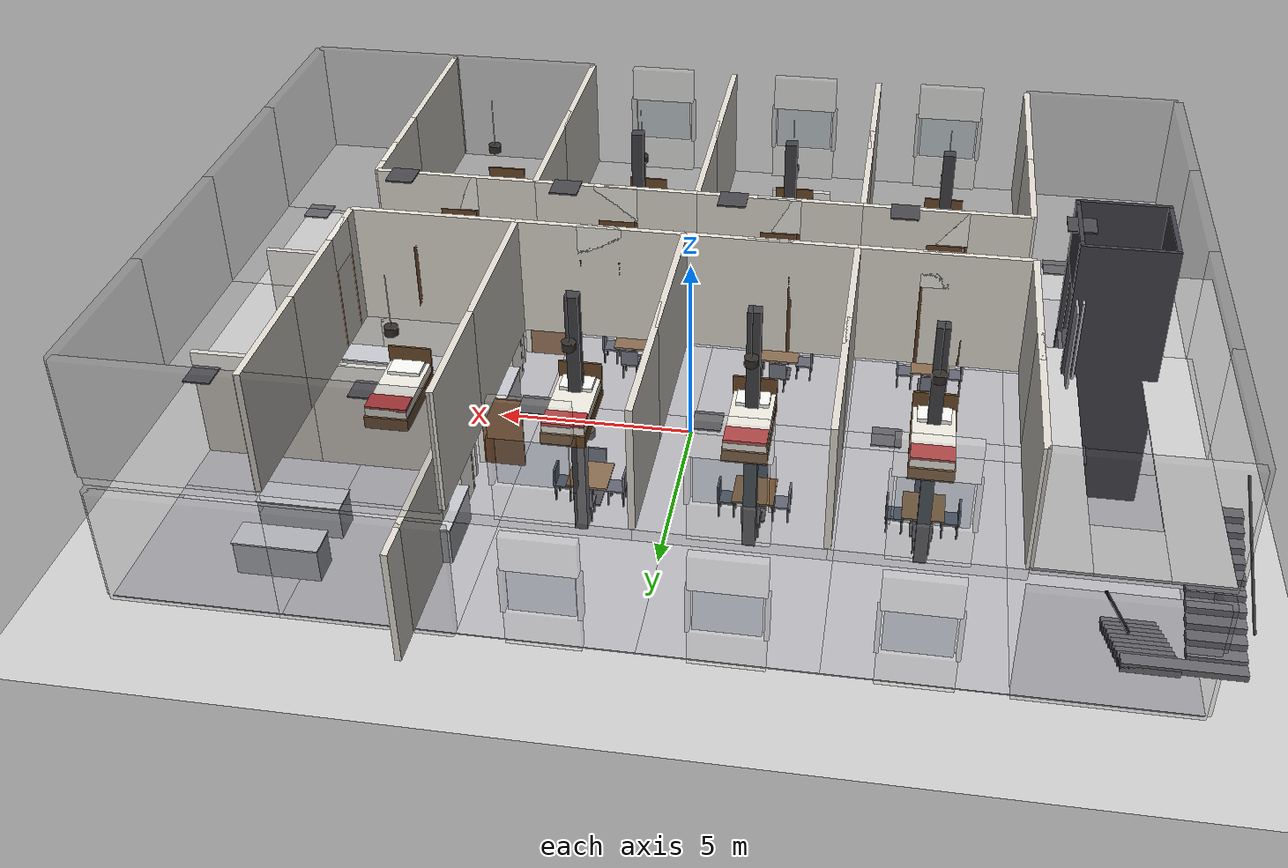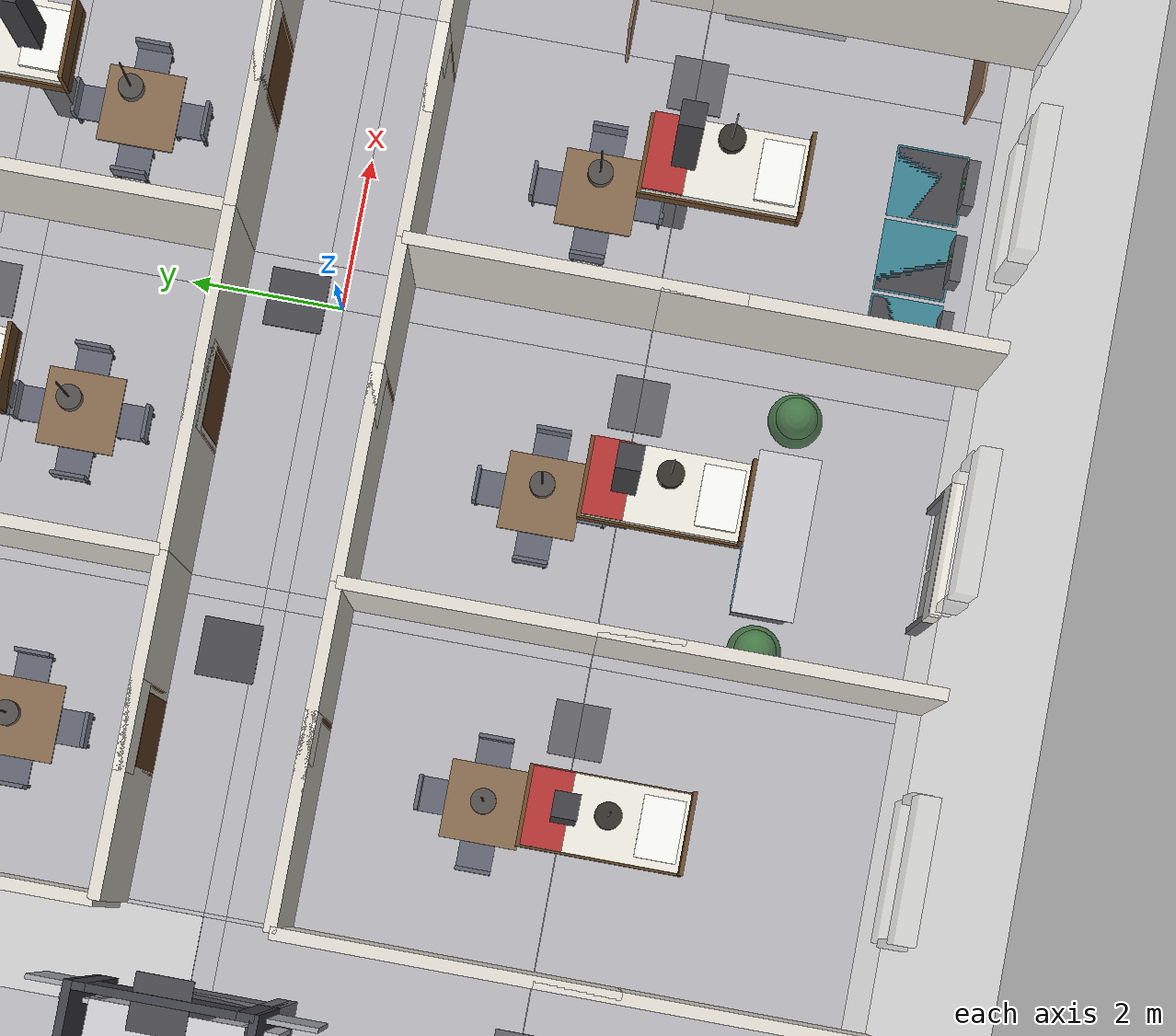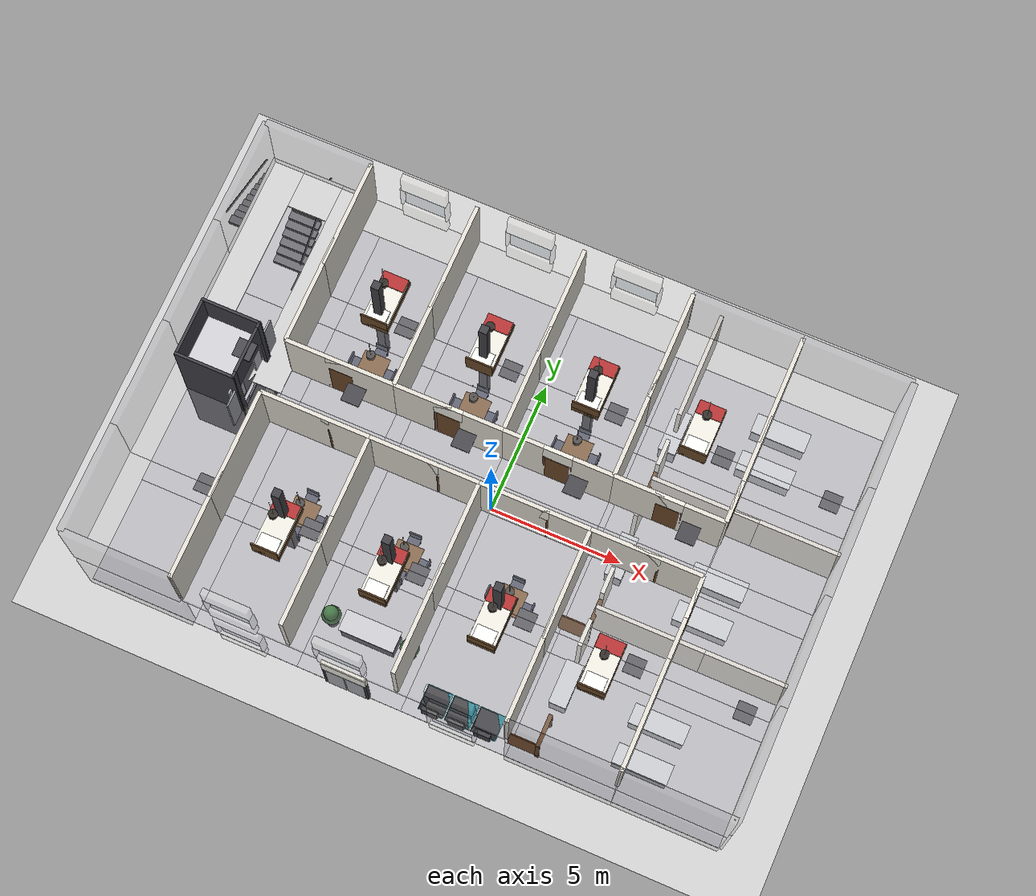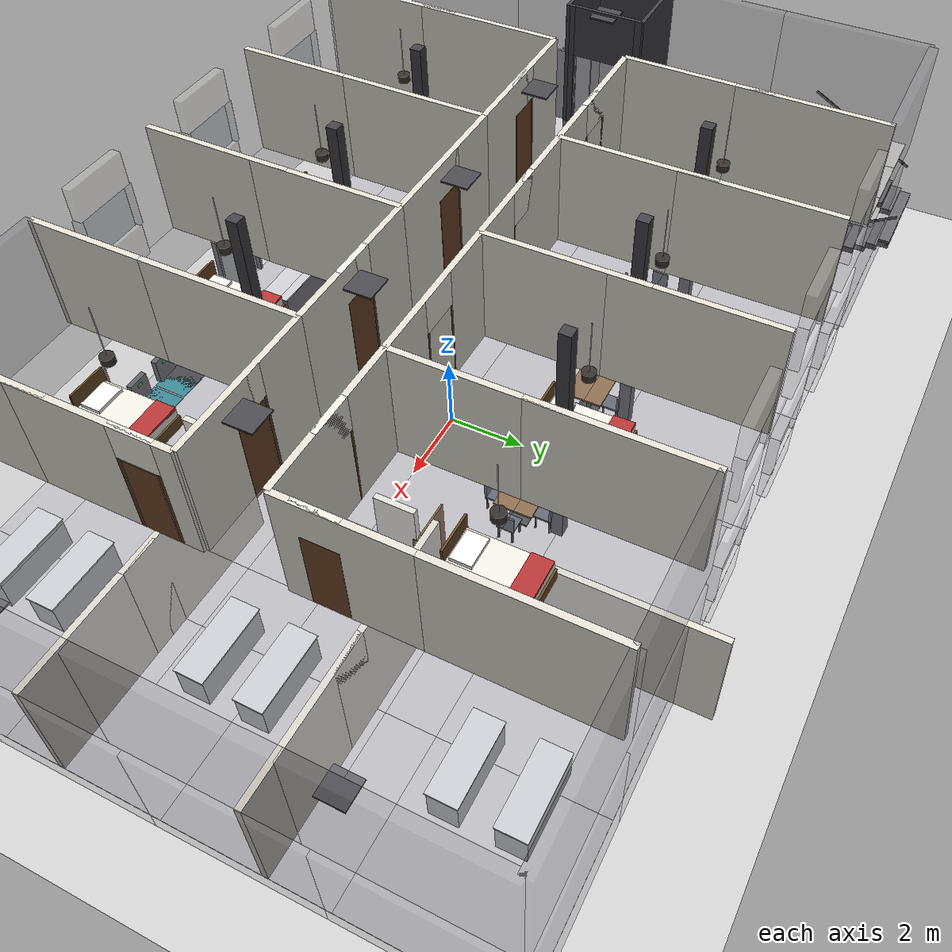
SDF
<?xml version="1.0" ?>
<sdf version="1.6">
  <world name="restaurant">
    <!-- A global light source -->
    <include>
      <uri>model://sun</uri>
    </include>
    <!-- A ground plane -->
    <include>
      <uri>model://ground_plane</uri>
    </include>

    <physics type="ode">
      <max_step_size>0.001</max_step_size>
      <real_time_factor>1</real_time_factor>
      <real_time_update_rate>1000</real_time_update_rate>
    </physics>

    <!-- Ground Floor Assembly -->
    <include>
      <name>ground_floor_inst</name>
      <uri>model://ground_floor</uri>
      <pose>0 0 0 0 0 0</pose>
    </include>

    <!-- First Floor Assembly -->
    <include>
      <name>first_floor_inst</name>
      <uri>model://first_floor</uri>
      <pose>0 0 3.5 0 0 0</pose>
    </include>

    <include>
      <name>lift_assembly_inst</name>
      <uri>model://_fixtures/lift_assembly</uri>
      <pose>-10 0 0 0 0 -1.5708</pose>
    </include>

  </world>
</sdf>

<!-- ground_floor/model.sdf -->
<sdf version="1.6">
  <model name="ground_floor">
    <static>true</static>

    <!-- Floor Slabs (6x4 grid) -->
    <!-- Row 1 (y = -6) -->
    <include><name>floor_slab_0_0</name><uri>model://_components/floor_slab</uri><pose>-10 -6 0 0 0 0</pose></include>
    <include><name>floor_slab_1_0</name><uri>model://_components/floor_slab</uri><pose>-6 -6 0 0 0 0</pose></include>
    <include><name>floor_slab_2_0</name><uri>model://_components/floor_slab</uri><pose>-2 -6 0 0 0 0</pose></include>
    <include><name>floor_slab_3_0</name><uri>model://_components/floor_slab</uri><pose>2 -6 0 0 0 0</pose></include>
    <include><name>floor_slab_4_0</name><uri>model://_components/floor_slab</uri><pose>6 -6 0 0 0 0</pose></include>
    <include><name>floor_slab_5_0</name><uri>model://_components/floor_slab</uri><pose>10 -6 0 0 0 0</pose></include>

    <!-- Row 2 (y = -2) -->
    <include><name>floor_slab_0_1</name><uri>model://_components/floor_slab</uri><pose>-10 -2 0 0 0 0</pose></include>
    <include><name>floor_slab_1_1</name><uri>model://_components/floor_slab</uri><pose>-6 -2 0 0 0 0</pose></include>
    <include><name>floor_slab_2_1</name><uri>model://_components/floor_slab</uri><pose>-2 -2 0 0 0 0</pose></include>
    <include><name>floor_slab_3_1</name><uri>model://_components/floor_slab</uri><pose>2 -2 0 0 0 0</pose></include>
    <include><name>floor_slab_4_1</name><uri>model://_components/floor_slab</uri><pose>6 -2 0 0 0 0</pose></include>
    <include><name>floor_slab_5_1</name><uri>model://_components/floor_slab</uri><pose>10 -2 0 0 0 0</pose></include>

    <!-- Row 3 (y = 2) -->
    <include><name>floor_slab_0_2</name><uri>model://_components/floor_slab</uri><pose>-10 2 0 0 0 0</pose></include>
    <include><name>floor_slab_1_2</name><uri>model://_components/floor_slab</uri><pose>-6 2 0 0 0 0</pose></include>
    <include><name>floor_slab_2_2</name><uri>model://_components/floor_slab</uri><pose>-2 2 0 0 0 0</pose></include>
    <include><name>floor_slab_3_2</name><uri>model://_components/floor_slab</uri><pose>2 2 0 0 0 0</pose></include>
    <include><name>floor_slab_4_2</name><uri>model://_components/floor_slab</uri><pose>6 2 0 0 0 0</pose></include>
    <include><name>floor_slab_5_2</name><uri>model://_components/floor_slab</uri><pose>10 2 0 0 0 0</pose></include>

    <!-- Row 4 (y = 6) -->
    <include><name>floor_slab_0_3</name><uri>model://_components/floor_slab</uri><pose>-10 6 0 0 0 0</pose></include>
    <include><name>floor_slab_1_3</name><uri>model://_components/floor_slab</uri><pose>-6 6 0 0 0 0</pose></include>
    <include><name>floor_slab_2_3</name><uri>model://_components/floor_slab</uri><pose>-2 6 0 0 0 0</pose></include>
    <include><name>floor_slab_3_3</name><uri>model://_components/floor_slab</uri><pose>2 6 0 0 0 0</pose></include>
    <include><name>floor_slab_4_3</name><uri>model://_components/floor_slab</uri><pose>6 6 0 0 0 0</pose></include>
    <include><name>floor_slab_5_3</name><uri>model://_components/floor_slab</uri><pose>10 6 0 0 0 0</pose></include>

    <!-- Exterior Walls -->
    <!-- South Facade (y = -8) -->
    <include><name>ext_wall_s0</name><uri>model://_components/wall_exterior</uri><pose>-10 -8 0 0 0 0</pose></include>
    <include><name>ext_wall_s1</name><uri>model://_components/window_standard</uri><pose>-6 -8 0 0 0 0</pose></include>
    <include><name>ext_wall_s2</name><uri>model://_components/door_double</uri><pose>-2 -8 0 0 0 0</pose></include>
    <include><name>ext_wall_s3</name><uri>model://_components/window_standard</uri><pose>2 -8 0 0 0 0</pose></include>
    <include><name>ext_wall_s4</name><uri>model://_components/wall_exterior</uri><pose>6 -8 0 0 0 0</pose></include>
    <include><name>ext_wall_s5</name><uri>model://_components/wall_exterior</uri><pose>10 -8 0 0 0 0</pose></include>

    <!-- North Facade (y = 8) -->
    <include><name>ext_wall_n0</name><uri>model://_components/wall_exterior</uri><pose>-10 8 0 0 0 3.14159</pose></include>
    <include><name>ext_wall_n1</name><uri>model://_components/window_standard</uri><pose>-6 8 0 0 0 3.14159</pose></include>
    <include><name>ext_wall_n2</name><uri>model://_components/window_standard</uri><pose>-2 8 0 0 0 3.14159</pose></include>
    <include><name>ext_wall_n3</name><uri>model://_components/window_standard</uri><pose>2 8 0 0 0 3.14159</pose></include>
    <include><name>ext_wall_n4</name><uri>model://_components/wall_exterior</uri><pose>6 8 0 0 0 3.14159</pose></include>
    <include><name>ext_wall_n5</name><uri>model://_components/wall_exterior</uri><pose>10 8 0 0 0 3.14159</pose></include>

    <!-- West Facade (x = -12) -->
    <include><name>ext_wall_w0</name><uri>model://_components/wall_exterior</uri><pose>-12 -6 0 0 0 1.5708</pose></include>
    <include><name>ext_wall_w1</name><uri>model://_components/wall_exterior</uri><pose>-12 -2 0 0 0 1.5708</pose></include>
    <include><name>ext_wall_w2</name><uri>model://_components/wall_exterior</uri><pose>-12 2 0 0 0 1.5708</pose></include>
    <include><name>ext_wall_w3</name><uri>model://_components/wall_exterior</uri><pose>-12 6 0 0 0 1.5708</pose></include>

    <!-- East Facade (x = 12) -->
    <include><name>ext_wall_e0</name><uri>model://_components/wall_exterior</uri><pose>12 -6 0 0 0 1.5708</pose></include>
    <include><name>ext_wall_e1</name><uri>model://_components/wall_exterior</uri><pose>12 -2 0 0 0 1.5708</pose></include>
    <include><name>ext_wall_e2</name><uri>model://_components/wall_exterior</uri><pose>12 2 0 0 0 1.5708</pose></include>
    <include><name>ext_wall_e3</name><uri>model://_components/wall_exterior</uri><pose>12 6 0 0 0 1.5708</pose></include>

    <!-- Pillars / Columns -->
    <include><name>column_0</name><uri>model://_components/column</uri><pose>-6 -4 0 0 0 0</pose></include>
    <include><name>column_1</name><uri>model://_components/column</uri><pose>-2 -4 0 0 0 0</pose></include>
    <include><name>column_2</name><uri>model://_components/column</uri><pose>2 -4 0 0 0 0</pose></include>
    <include><name>column_3</name><uri>model://_components/column</uri><pose>-6 4 0 0 0 0</pose></include>
    <include><name>column_4</name><uri>model://_components/column</uri><pose>-2 4 0 0 0 0</pose></include>
    <include><name>column_5</name><uri>model://_components/column</uri><pose>2 4 0 0 0 0</pose></include>

    <!-- Staircase (Back-Left Area) - moved to the former lift spot, same working rotation -->
    <include><name>stairs</name><uri>model://_fixtures/staircase</uri><pose>-10 5.5 0 0 0 1.5708</pose></include>

    <!-- Kitchen Partition Wall (x = 5.0) and Gaps for Counters / Doors -->
    <include><name>kitchen_partition_n</name><uri>model://_components/wall_segment_4m</uri><pose>5.0 7.0 0 0 0 1.5708</pose></include>
    <include><name>kitchen_partition_mid1</name><uri>model://_components/wall_segment</uri><pose>5.0 3.5 0 0 0 1.5708</pose></include>
    <include><name>kitchen_partition_mid2</name><uri>model://_components/wall_segment</uri><pose>5.0 1.5 0 0 0 1.5708</pose></include>
    <include><name>kitchen_partition_mid3</name><uri>model://_components/wall_segment</uri><pose>5.0 -1.5 0 0 0 1.5708</pose></include>
    <include><name>kitchen_partition_mid4</name><uri>model://_components/wall_segment</uri><pose>5.0 -3.5 0 0 0 1.5708</pose></include>

    <!-- Kitchen Side Walls (East-West division walls) -->
    <!-- Kitchen 1 vs Kitchen 2 (y = 2.5) -->
    <include><name>kitchen_wall_1_2_a</name><uri>model://_components/wall_segment_4m</uri><pose>7.0 2.5 0 0 0 0</pose></include>
    <include><name>kitchen_wall_1_2_b</name><uri>model://_components/wall_segment_4m</uri><pose>10.0 2.5 0 0 0 0</pose></include>
    <!-- Kitchen 2 vs Kitchen 3 (y = -2.5) -->
    <include><name>kitchen_wall_2_3_a</name><uri>model://_components/wall_segment_4m</uri><pose>7.0 -2.5 0 0 0 0</pose></include>
    <include><name>kitchen_wall_2_3_b</name><uri>model://_components/wall_segment_4m</uri><pose>10.0 -2.5 0 0 0 0</pose></include>

    <!-- Kitchen Entry Doors (placed in partition wall at x = 5.0) -->
    <include><name>kitchen_door_1</name><uri>model://_components/door_single_wide</uri><pose>5.0 2.5 0 0 0 1.5708</pose></include>
    <include><name>kitchen_door_2</name><uri>model://_components/door_single_wide</uri><pose>5.0 -2.5 0 0 0 1.5708</pose></include>
    <include><name>kitchen_door_3</name><uri>model://_components/door_single_wide</uri><pose>5.0 -7.0 0 0 0 1.5708</pose></include>

    <!-- Three Receiving Counters (Handoff area) -->
    <include><name>receiving_counter_1</name><uri>model://_furniture/receiving_counter</uri><pose>5.0 5.0 0 0 0 1.5708</pose></include>
    <include><name>receiving_counter_2</name><uri>model://_furniture/receiving_counter</uri><pose>5.0 0.0 0 0 0 1.5708</pose></include>
    <include><name>receiving_counter_3</name><uri>model://_furniture/receiving_counter</uri><pose>5.0 -5.0 0 0 0 1.5708</pose></include>

    <!-- Kitchen Internal Counters -->
    <!-- Kitchen 1 -->
    <include><name>k1_counter_1</name><uri>model://_furniture/kitchen_counter</uri><pose>8.5 5.0 0 0 0 0</pose></include>
    <include><name>k1_counter_2</name><uri>model://_furniture/kitchen_counter</uri><pose>8.5 6.5 0 0 0 0</pose></include>
    <!-- Kitchen 2 -->
    <include><name>k2_counter_1</name><uri>model://_furniture/kitchen_counter</uri><pose>8.5 0.5 0 0 0 0</pose></include>
    <include><name>k2_counter_2</name><uri>model://_furniture/kitchen_counter</uri><pose>8.5 -1.0 0 0 0 0</pose></include>
    <!-- Kitchen 3 -->
    <include><name>k3_counter_1</name><uri>model://_furniture/kitchen_counter</uri><pose>8.5 -5.0 0 0 0 0</pose></include>
    <include><name>k3_counter_2</name><uri>model://_furniture/kitchen_counter</uri><pose>8.5 -6.5 0 0 0 0</pose></include>

    <!-- Dining Hall: 6 Tables and 24 Chairs -->
    <!-- Table 1 (x = -6, y = 3) -->
    <include><name>table_1</name><uri>model://_furniture/dining_table_4</uri><pose>-6 3 0 0 0 0</pose></include>
    <include><name>table_1_chair_n</name><uri>model://_furniture/chair</uri><pose>-6 3.65 0 0 0 -1.5708</pose></include>
    <include><name>table_1_chair_s</name><uri>model://_furniture/chair</uri><pose>-6 2.35 0 0 0 1.5708</pose></include>
    <include><name>table_1_chair_e</name><uri>model://_furniture/chair</uri><pose>-5.35 3 0 0 0 3.14159</pose></include>
    <include><name>table_1_chair_w</name><uri>model://_furniture/chair</uri><pose>-6.65 3 0 0 0 0</pose></include>

    <!-- Table 2 (x = -6, y = -3) -->
    <include><name>table_2</name><uri>model://_furniture/dining_table_4</uri><pose>-6 -3 0 0 0 0</pose></include>
    <include><name>table_2_chair_n</name><uri>model://_furniture/chair</uri><pose>-6 -2.35 0 0 0 -1.5708</pose></include>
    <include><name>table_2_chair_s</name><uri>model://_furniture/chair</uri><pose>-6 -3.65 0 0 0 1.5708</pose></include>
    <include><name>table_2_chair_e</name><uri>model://_furniture/chair</uri><pose>-5.35 -3 0 0 0 3.14159</pose></include>
    <include><name>table_2_chair_w</name><uri>model://_furniture/chair</uri><pose>-6.65 -3 0 0 0 0</pose></include>

    <!-- Table 3 (x = -2, y = 3) -->
    <include><name>table_3</name><uri>model://_furniture/dining_table_4</uri><pose>-2 3 0 0 0 0</pose></include>
    <include><name>table_3_chair_n</name><uri>model://_furniture/chair</uri><pose>-2 3.65 0 0 0 -1.5708</pose></include>
    <include><name>table_3_chair_s</name><uri>model://_furniture/chair</uri><pose>-2 2.35 0 0 0 1.5708</pose></include>
    <include><name>table_3_chair_e</name><uri>model://_furniture/chair</uri><pose>-1.35 3 0 0 0 3.14159</pose></include>
    <include><name>table_3_chair_w</name><uri>model://_furniture/chair</uri><pose>-2.65 3 0 0 0 0</pose></include>

    <!-- Table 4 (x = -2, y = -3) -->
    <include><name>table_4</name><uri>model://_furniture/dining_table_4</uri><pose>-2 -3 0 0 0 0</pose></include>
    <include><name>table_4_chair_n</name><uri>model://_furniture/chair</uri><pose>-2 -2.35 0 0 0 -1.5708</pose></include>
    <include><name>table_4_chair_s</name><uri>model://_furniture/chair</uri><pose>-2 -3.65 0 0 0 1.5708</pose></include>
    <include><name>table_4_chair_e</name><uri>model://_furniture/chair</uri><pose>-1.35 -3 0 0 0 3.14159</pose></include>
    <include><name>table_4_chair_w</name><uri>model://_furniture/chair</uri><pose>-2.65 -3 0 0 0 0</pose></include>

    <!-- Table 5 (x = 2, y = 3) -->
    <include><name>table_5</name><uri>model://_furniture/dining_table_4</uri><pose>2 3 0 0 0 0</pose></include>
    <include><name>table_5_chair_n</name><uri>model://_furniture/chair</uri><pose>2 3.65 0 0 0 -1.5708</pose></include>
    <include><name>table_5_chair_s</name><uri>model://_furniture/chair</uri><pose>2 2.35 0 0 0 1.5708</pose></include>
    <include><name>table_5_chair_e</name><uri>model://_furniture/chair</uri><pose>2.65 3 0 0 0 3.14159</pose></include>
    <include><name>table_5_chair_w</name><uri>model://_furniture/chair</uri><pose>1.35 3 0 0 0 0</pose></include>

    <!-- Table 6 (x = 2, y = -3) -->
    <include><name>table_6</name><uri>model://_furniture/dining_table_4</uri><pose>2 -3 0 0 0 0</pose></include>
    <include><name>table_6_chair_n</name><uri>model://_furniture/chair</uri><pose>2 -2.35 0 0 0 -1.5708</pose></include>
    <include><name>table_6_chair_s</name><uri>model://_furniture/chair</uri><pose>2 -3.65 0 0 0 1.5708</pose></include>
    <include><name>table_6_chair_e</name><uri>model://_furniture/chair</uri><pose>2.65 -3 0 0 0 3.14159</pose></include>
    <include><name>table_6_chair_w</name><uri>model://_furniture/chair</uri><pose>1.35 -3 0 0 0 0</pose></include>

    <!-- Reception Area (near entrance) -->
    <include><name>reception_desk</name><uri>model://_furniture/reception_counter</uri><pose>-2 -6 0 0 0 3.14159</pose></include>
    <include><name>plant_lobby_l</name><uri>model://_furniture/indoor_plant</uri><pose>-3.5 -6 0 0 0 0</pose></include>
    <include><name>plant_lobby_r</name><uri>model://_furniture/indoor_plant</uri><pose>-0.5 -6 0 0 0 0</pose></include>

    <!-- Charging Station Area (near kitchens / service pathway) -->
    <include><name>dock_1</name><uri>model://_furniture/charging_dock</uri><pose>1.0 -7.2 0 0 0 1.5708</pose></include>
    <include><name>dock_2</name><uri>model://_furniture/charging_dock</uri><pose>2.0 -7.2 0 0 0 1.5708</pose></include>
    <include><name>dock_3</name><uri>model://_furniture/charging_dock</uri><pose>3.0 -7.2 0 0 0 1.5708</pose></include>

    <!-- Ceiling Lights (arranged on ceiling grid at z = 3.4m) -->
    <include><name>light_c0_0</name><uri>model://_lighting/ceiling_light_panel</uri><pose>-9 -4 3.4 0 0 0</pose></include>
    <include><name>light_c1_0</name><uri>model://_lighting/ceiling_light_panel</uri><pose>-5 -4 3.4 0 0 0</pose></include>
    <include><name>light_c2_0</name><uri>model://_lighting/ceiling_light_panel</uri><pose>-1 -4 3.4 0 0 0</pose></include>
    <include><name>light_c3_0</name><uri>model://_lighting/ceiling_light_panel</uri><pose>3 -4 3.4 0 0 0</pose></include>
    <include><name>light_c4_0</name><uri>model://_lighting/ceiling_light_panel</uri><pose>7 -4 3.4 0 0 0</pose></include>
    <include><name>light_c5_0</name><uri>model://_lighting/ceiling_light_panel</uri><pose>11 -4 3.4 0 0 0</pose></include>

    <include><name>light_c0_1</name><uri>model://_lighting/ceiling_light_panel</uri><pose>-9 4 3.4 0 0 0</pose></include>
    <include><name>light_c1_1</name><uri>model://_lighting/ceiling_light_panel</uri><pose>-5 4 3.4 0 0 0</pose></include>
    <include><name>light_c2_1</name><uri>model://_lighting/ceiling_light_panel</uri><pose>-1 4 3.4 0 0 0</pose></include>
    <include><name>light_c3_1</name><uri>model://_lighting/ceiling_light_panel</uri><pose>3 4 3.4 0 0 0</pose></include>
    <include><name>light_c4_1</name><uri>model://_lighting/ceiling_light_panel</uri><pose>7 4 3.4 0 0 0</pose></include>
    <include><name>light_c5_1</name><uri>model://_lighting/ceiling_light_panel</uri><pose>11 4 3.4 0 0 0</pose></include>

    <!-- Elegant Pendant Lights over Dining Tables -->
    <include><name>pendant_light_1</name><uri>model://_lighting/pendant_light</uri><pose>-6 3 3.4 0 0 0</pose></include>
    <include><name>pendant_light_2</name><uri>model://_lighting/pendant_light</uri><pose>-6 -3 3.4 0 0 0</pose></include>
    <include><name>pendant_light_3</name><uri>model://_lighting/pendant_light</uri><pose>-2 3 3.4 0 0 0</pose></include>
    <include><name>pendant_light_4</name><uri>model://_lighting/pendant_light</uri><pose>-2 -3 3.4 0 0 0</pose></include>
    <include><name>pendant_light_5</name><uri>model://_lighting/pendant_light</uri><pose>2 3 3.4 0 0 0</pose></include>
    <include><name>pendant_light_6</name><uri>model://_lighting/pendant_light</uri><pose>2 -3 3.4 0 0 0</pose></include>

  </model>
</sdf>

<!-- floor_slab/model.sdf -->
<sdf version="1.6">
  <model name="floor_slab">
    <static>true</static>
    <link name="floor_link">
      <pose>0 0 -0.15 0 0 0</pose>
      <collision name="floor_col">
        <geometry><box><size>4.0 4.0 0.30</size></box></geometry>
        <surface>
          <friction><ode><mu>0.9</mu><mu2>0.9</mu2></ode></friction>
        </surface>
      </collision>
      <visual name="floor_vis">
        <geometry><box><size>4.0 4.0 0.30</size></box></geometry>
        <material>
          <!-- Polished porcelain: light grey, strong specular sheen -->
          <ambient>0.55 0.55 0.57 1</ambient>
          <diffuse>0.72 0.72 0.74 1</diffuse>
          <specular>0.55 0.55 0.57 1</specular>
          <emissive>0 0 0 1</emissive>
        </material>
      </visual>
    </link>
  </model>
</sdf>

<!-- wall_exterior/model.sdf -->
<sdf version="1.6">
  <model name="wall_exterior">
    <static>true</static>
    <link name="link">
      <pose>0 0 1.5 0 0 0</pose>
      <collision name="collision">
        <geometry>
          <box>
            <size>4.0 0.25 3.0</size>
          </box>
        </geometry>
      </collision>
      <visual name="visual">
        <geometry>
          <box>
            <size>4.0 0.25 3.0</size>
          </box>
        </geometry>
        <material>
          <ambient>0.35 0.35 0.38 1</ambient>
          <diffuse>0.35 0.35 0.38 1</diffuse>
          <specular>0.2 0.2 0.2 1</specular>
        </material>
        <transparency>0.85</transparency>
      </visual>
    </link>
  </model>
</sdf>

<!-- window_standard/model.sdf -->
<sdf version="1.6">
  <model name="window_standard">
    <static>true</static>
    <link name="frame_link">
      <!-- Sill (below glass) fill: z 0.0 -> 0.9 -->
      <collision name="sill_col">
        <pose>0 0 0.45 0 0 0</pose>
        <geometry><box><size>1.7 0.25 0.9</size></box></geometry>
      </collision>
      <visual name="sill_vis">
        <pose>0 0 0.45 0 0 0</pose>
        <geometry><box><size>1.7 0.25 0.9</size></box></geometry>
        <material><ambient>0.85 0.84 0.80 1</ambient><diffuse>0.92 0.91 0.87 1</diffuse><specular>0.05 0.05 0.05 1</specular></material>
        <transparency>0.85</transparency>
      </visual>

      <!-- Header (above glass): z 2.1 -> 3.0 -->
      <collision name="header_col">
        <pose>0 0 2.55 0 0 0</pose>
        <geometry><box><size>1.7 0.25 0.9</size></box></geometry>
      </collision>
      <visual name="header_vis">
        <pose>0 0 2.55 0 0 0</pose>
        <geometry><box><size>1.7 0.25 0.9</size></box></geometry>
        <material><ambient>0.85 0.84 0.80 1</ambient><diffuse>0.92 0.91 0.87 1</diffuse><specular>0.05 0.05 0.05 1</specular></material>
        <transparency>0.85</transparency>
      </visual>

      <!-- Left mullion -->
      <collision name="mull_left_col">
        <pose>-0.85 0 1.5 0 0 0</pose>
        <geometry><box><size>0.10 0.25 1.2</size></box></geometry>
      </collision>
      <visual name="mull_left_vis">
        <pose>-0.85 0 1.5 0 0 0</pose>
        <geometry><box><size>0.10 0.25 1.2</size></box></geometry>
        <material><ambient>0.30 0.30 0.32 1</ambient><diffuse>0.38 0.38 0.40 1</diffuse><specular>0.25 0.25 0.27 1</specular></material>
        <transparency>0.85</transparency>
      </visual>
      <!-- Right mullion -->
      <collision name="mull_right_col">
        <pose>0.85 0 1.5 0 0 0</pose>
        <geometry><box><size>0.10 0.25 1.2</size></box></geometry>
      </collision>
      <visual name="mull_right_vis">
        <pose>0.85 0 1.5 0 0 0</pose>
        <geometry><box><size>0.10 0.25 1.2</size></box></geometry>
        <material><ambient>0.30 0.30 0.32 1</ambient><diffuse>0.38 0.38 0.40 1</diffuse><specular>0.25 0.25 0.27 1</specular></material>
        <transparency>0.85</transparency>
      </visual>
    </link>

    <!-- ===== GLASS (visual only) ===== -->
    <link name="glass_link">
      <pose>0 0 1.5 0 0 0</pose>
      <visual name="glass_vis">
        <geometry><box><size>1.5 0.03 1.2</size></box></geometry>
        <material>
          <!-- Cool tinted transparent glass -->
          <ambient>0.35 0.45 0.50 0.30</ambient>
          <diffuse>0.45 0.55 0.60 0.30</diffuse>
          <specular>0.70 0.70 0.72 0.30</specular>
        </material>
        <transparency>0.7</transparency>
      </visual>
    </link>
  </model>
</sdf>

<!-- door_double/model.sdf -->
<sdf version="1.6">
  <model name="door_double">
    <static>true</static>
    <link name="frame_link">
      <collision name="jamb_left_col">
        <pose>-0.79 0 1.05 0 0 0</pose>
        <geometry><box><size>0.08 0.15 2.1</size></box></geometry>
      </collision>
      <visual name="jamb_left_vis">
        <pose>-0.79 0 1.05 0 0 0</pose>
        <geometry><box><size>0.08 0.15 2.1</size></box></geometry>
        <material><ambient>0.20 0.20 0.22 1</ambient><diffuse>0.28 0.28 0.30 1</diffuse><specular>0.30 0.30 0.32 1</specular></material>
      </visual>
      <collision name="jamb_right_col">
        <pose>0.79 0 1.05 0 0 0</pose>
        <geometry><box><size>0.08 0.15 2.1</size></box></geometry>
      </collision>
      <visual name="jamb_right_vis">
        <pose>0.79 0 1.05 0 0 0</pose>
        <geometry><box><size>0.08 0.15 2.1</size></box></geometry>
        <material><ambient>0.20 0.20 0.22 1</ambient><diffuse>0.28 0.28 0.30 1</diffuse><specular>0.30 0.30 0.32 1</specular></material>
      </visual>
      <collision name="head_col">
        <pose>0 0 2.55 0 0 0</pose>
        <geometry><box><size>1.66 0.15 0.9</size></box></geometry>
      </collision>
      <visual name="head_vis">
        <pose>0 0 2.55 0 0 0</pose>
        <geometry><box><size>1.66 0.15 0.9</size></box></geometry>
        <material><ambient>0.85 0.84 0.80 1</ambient><diffuse>0.92 0.91 0.87 1</diffuse><specular>0.05 0.05 0.05 1</specular></material>
      </visual>
    </link>

    <link name="leaf_left">
      <pose>-0.375 -0.06 1.05 0 0 0</pose>
      <collision name="col"><geometry><box><size>0.70 0.04 2.05</size></box></geometry></collision>
      <visual name="vis">
        <geometry><box><size>0.70 0.04 2.05</size></box></geometry>
        <!-- Brushed-metal look via high specular -->
        <material><ambient>0.55 0.56 0.58 1</ambient><diffuse>0.65 0.66 0.68 1</diffuse><specular>0.60 0.60 0.62 1</specular></material>
      </visual>
    </link>
    <link name="leaf_right">
      <pose>0.375 -0.06 1.05 0 0 0</pose>
      <collision name="col"><geometry><box><size>0.70 0.04 2.05</size></box></geometry></collision>
      <visual name="vis">
        <geometry><box><size>0.70 0.04 2.05</size></box></geometry>
        <material><ambient>0.55 0.56 0.58 1</ambient><diffuse>0.65 0.66 0.68 1</diffuse><specular>0.60 0.60 0.62 1</specular></material>
      </visual>
    </link>
  </model>
</sdf>

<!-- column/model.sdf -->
<!--
  column | Module A - Structural Components
  0.30 x 0.30 m footprint, 3.0 m tall. Bottom at z=0. Origin at footprint centre, floor level.
-->
<sdf version="1.6">
  <model name="column">
    <static>true</static>
    <link name="column_link">
      <pose>0 0 1.5 0 0 0</pose>
      <collision name="column_col">
        <geometry><box><size>0.30 0.30 3.0</size></box></geometry>
      </collision>
      <visual name="column_vis">
        <geometry><box><size>0.30 0.30 3.0</size></box></geometry>
        <material>
          <!-- Premium charcoal cladding -->
          <ambient>0.18 0.18 0.20 1</ambient>
          <diffuse>0.25 0.25 0.27 1</diffuse>
          <specular>0.30 0.30 0.32 1</specular>
        </material>
      </visual>
    </link>
  </model>
</sdf>

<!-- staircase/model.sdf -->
<sdf version="1.6">
  <model name="staircase">
    <static>true</static>

    <!-- ===================== FLIGHT A (steps 1..10, +X, Y 0..1.2) ===================== -->
    <link name="flight_a">
      <!-- Step template repeated; tread 0.30, rise 0.165, top of step n at n*0.165 -->
      <!-- Step 1 -->
      <collision name="a1_col"><pose>0.15 0.6 0.0825 0 0 0</pose><geometry><box><size>0.30 1.2 0.165</size></box></geometry></collision>
      <visual name="a1_vis"><pose>0.15 0.6 0.0825 0 0 0</pose><geometry><box><size>0.30 1.2 0.165</size></box></geometry>
        <material><ambient>0.30 0.30 0.32 1</ambient><diffuse>0.42 0.42 0.44 1</diffuse><specular>0.30 0.30 0.32 1</specular></material></visual>
      <!-- Step 2 -->
      <collision name="a2_col"><pose>0.45 0.6 0.2475 0 0 0</pose><geometry><box><size>0.30 1.2 0.165</size></box></geometry></collision>
      <visual name="a2_vis"><pose>0.45 0.6 0.2475 0 0 0</pose><geometry><box><size>0.30 1.2 0.165</size></box></geometry>
        <material><ambient>0.30 0.30 0.32 1</ambient><diffuse>0.42 0.42 0.44 1</diffuse><specular>0.30 0.30 0.32 1</specular></material></visual>
      <!-- Step 3 -->
      <collision name="a3_col"><pose>0.75 0.6 0.4125 0 0 0</pose><geometry><box><size>0.30 1.2 0.165</size></box></geometry></collision>
      <visual name="a3_vis"><pose>0.75 0.6 0.4125 0 0 0</pose><geometry><box><size>0.30 1.2 0.165</size></box></geometry>
        <material><ambient>0.30 0.30 0.32 1</ambient><diffuse>0.42 0.42 0.44 1</diffuse><specular>0.30 0.30 0.32 1</specular></material></visual>
      <!-- Step 4 -->
      <collision name="a4_col"><pose>1.05 0.6 0.5775 0 0 0</pose><geometry><box><size>0.30 1.2 0.165</size></box></geometry></collision>
      <visual name="a4_vis"><pose>1.05 0.6 0.5775 0 0 0</pose><geometry><box><size>0.30 1.2 0.165</size></box></geometry>
        <material><ambient>0.30 0.30 0.32 1</ambient><diffuse>0.42 0.42 0.44 1</diffuse><specular>0.30 0.30 0.32 1</specular></material></visual>
      <!-- Step 5 -->
      <collision name="a5_col"><pose>1.35 0.6 0.7425 0 0 0</pose><geometry><box><size>0.30 1.2 0.165</size></box></geometry></collision>
      <visual name="a5_vis"><pose>1.35 0.6 0.7425 0 0 0</pose><geometry><box><size>0.30 1.2 0.165</size></box></geometry>
        <material><ambient>0.30 0.30 0.32 1</ambient><diffuse>0.42 0.42 0.44 1</diffuse><specular>0.30 0.30 0.32 1</specular></material></visual>
      <!-- Step 6 -->
      <collision name="a6_col"><pose>1.65 0.6 0.9075 0 0 0</pose><geometry><box><size>0.30 1.2 0.165</size></box></geometry></collision>
      <visual name="a6_vis"><pose>1.65 0.6 0.9075 0 0 0</pose><geometry><box><size>0.30 1.2 0.165</size></box></geometry>
        <material><ambient>0.30 0.30 0.32 1</ambient><diffuse>0.42 0.42 0.44 1</diffuse><specular>0.30 0.30 0.32 1</specular></material></visual>
      <!-- Step 7 -->
      <collision name="a7_col"><pose>1.95 0.6 1.0725 0 0 0</pose><geometry><box><size>0.30 1.2 0.165</size></box></geometry></collision>
      <visual name="a7_vis"><pose>1.95 0.6 1.0725 0 0 0</pose><geometry><box><size>0.30 1.2 0.165</size></box></geometry>
        <material><ambient>0.30 0.30 0.32 1</ambient><diffuse>0.42 0.42 0.44 1</diffuse><specular>0.30 0.30 0.32 1</specular></material></visual>
      <!-- Step 8 -->
      <collision name="a8_col"><pose>2.25 0.6 1.2375 0 0 0</pose><geometry><box><size>0.30 1.2 0.165</size></box></geometry></collision>
      <visual name="a8_vis"><pose>2.25 0.6 1.2375 0 0 0</pose><geometry><box><size>0.30 1.2 0.165</size></box></geometry>
        <material><ambient>0.30 0.30 0.32 1</ambient><diffuse>0.42 0.42 0.44 1</diffuse><specular>0.30 0.30 0.32 1</specular></material></visual>
      <!-- Step 9 -->
      <collision name="a9_col"><pose>2.55 0.6 1.4025 0 0 0</pose><geometry><box><size>0.30 1.2 0.165</size></box></geometry></collision>
      <visual name="a9_vis"><pose>2.55 0.6 1.4025 0 0 0</pose><geometry><box><size>0.30 1.2 0.165</size></box></geometry>
        <material><ambient>0.30 0.30 0.32 1</ambient><diffuse>0.42 0.42 0.44 1</diffuse><specular>0.30 0.30 0.32 1</specular></material></visual>
      <!-- Step 10 -->
      <collision name="a10_col"><pose>2.85 0.6 1.5675 0 0 0</pose><geometry><box><size>0.30 1.2 0.165</size></box></geometry></collision>
      <visual name="a10_vis"><pose>2.85 0.6 1.5675 0 0 0</pose><geometry><box><size>0.30 1.2 0.165</size></box></geometry>
        <material><ambient>0.30 0.30 0.32 1</ambient><diffuse>0.42 0.42 0.44 1</diffuse><specular>0.30 0.30 0.32 1</specular></material></visual>
    </link>

    <!-- ===================== LANDING (at z=1.65, X 2.7..3.0, Y 0..2.5) ===================== -->
    <link name="landing">
      <collision name="landing_col"><pose>2.85 1.25 1.6425 0 0 0</pose><geometry><box><size>0.30 2.5 0.15</size></box></geometry></collision>
      <visual name="landing_vis"><pose>2.85 1.25 1.6425 0 0 0</pose><geometry><box><size>0.30 2.5 0.15</size></box></geometry>
        <material><ambient>0.28 0.28 0.30 1</ambient><diffuse>0.40 0.40 0.42 1</diffuse><specular>0.35 0.35 0.37 1</specular></material></visual>
    </link>

    <!-- ===================== FLIGHT B (steps 11..20, -X, Y 1.3..2.5) ===================== -->
    <link name="flight_b">
      <!-- Step 11 (first above landing 1.65) -->
      <collision name="b11_col"><pose>2.55 1.9 1.7325 0 0 0</pose><geometry><box><size>0.30 1.2 0.165</size></box></geometry></collision>
      <visual name="b11_vis"><pose>2.55 1.9 1.7325 0 0 0</pose><geometry><box><size>0.30 1.2 0.165</size></box></geometry>
        <material><ambient>0.30 0.30 0.32 1</ambient><diffuse>0.42 0.42 0.44 1</diffuse><specular>0.30 0.30 0.32 1</specular></material></visual>
      <collision name="b12_col"><pose>2.25 1.9 1.8975 0 0 0</pose><geometry><box><size>0.30 1.2 0.165</size></box></geometry></collision>
      <visual name="b12_vis"><pose>2.25 1.9 1.8975 0 0 0</pose><geometry><box><size>0.30 1.2 0.165</size></box></geometry>
        <material><ambient>0.30 0.30 0.32 1</ambient><diffuse>0.42 0.42 0.44 1</diffuse><specular>0.30 0.30 0.32 1</specular></material></visual>
      <collision name="b13_col"><pose>1.95 1.9 2.0625 0 0 0</pose><geometry><box><size>0.30 1.2 0.165</size></box></geometry></collision>
      <visual name="b13_vis"><pose>1.95 1.9 2.0625 0 0 0</pose><geometry><box><size>0.30 1.2 0.165</size></box></geometry>
        <material><ambient>0.30 0.30 0.32 1</ambient><diffuse>0.42 0.42 0.44 1</diffuse><specular>0.30 0.30 0.32 1</specular></material></visual>
      <collision name="b14_col"><pose>1.65 1.9 2.2275 0 0 0</pose><geometry><box><size>0.30 1.2 0.165</size></box></geometry></collision>
      <visual name="b14_vis"><pose>1.65 1.9 2.2275 0 0 0</pose><geometry><box><size>0.30 1.2 0.165</size></box></geometry>
        <material><ambient>0.30 0.30 0.32 1</ambient><diffuse>0.42 0.42 0.44 1</diffuse><specular>0.30 0.30 0.32 1</specular></material></visual>
      <collision name="b15_col"><pose>1.35 1.9 2.3925 0 0 0</pose><geometry><box><size>0.30 1.2 0.165</size></box></geometry></collision>
      <visual name="b15_vis"><pose>1.35 1.9 2.3925 0 0 0</pose><geometry><box><size>0.30 1.2 0.165</size></box></geometry>
        <material><ambient>0.30 0.30 0.32 1</ambient><diffuse>0.42 0.42 0.44 1</diffuse><specular>0.30 0.30 0.32 1</specular></material></visual>
      <collision name="b16_col"><pose>1.05 1.9 2.5575 0 0 0</pose><geometry><box><size>0.30 1.2 0.165</size></box></geometry></collision>
      <visual name="b16_vis"><pose>1.05 1.9 2.5575 0 0 0</pose><geometry><box><size>0.30 1.2 0.165</size></box></geometry>
        <material><ambient>0.30 0.30 0.32 1</ambient><diffuse>0.42 0.42 0.44 1</diffuse><specular>0.30 0.30 0.32 1</specular></material></visual>
      <collision name="b17_col"><pose>0.75 1.9 2.7225 0 0 0</pose><geometry><box><size>0.30 1.2 0.165</size></box></geometry></collision>
      <visual name="b17_vis"><pose>0.75 1.9 2.7225 0 0 0</pose><geometry><box><size>0.30 1.2 0.165</size></box></geometry>
        <material><ambient>0.30 0.30 0.32 1</ambient><diffuse>0.42 0.42 0.44 1</diffuse><specular>0.30 0.30 0.32 1</specular></material></visual>
      <collision name="b18_col"><pose>0.45 1.9 2.8875 0 0 0</pose><geometry><box><size>0.30 1.2 0.165</size></box></geometry></collision>
      <visual name="b18_vis"><pose>0.45 1.9 2.8875 0 0 0</pose><geometry><box><size>0.30 1.2 0.165</size></box></geometry>
        <material><ambient>0.30 0.30 0.32 1</ambient><diffuse>0.42 0.42 0.44 1</diffuse><specular>0.30 0.30 0.32 1</specular></material></visual>
      <collision name="b19_col"><pose>0.15 1.9 3.0525 0 0 0</pose><geometry><box><size>0.30 1.2 0.165</size></box></geometry></collision>
      <visual name="b19_vis"><pose>0.15 1.9 3.0525 0 0 0</pose><geometry><box><size>0.30 1.2 0.165</size></box></geometry>
        <material><ambient>0.30 0.30 0.32 1</ambient><diffuse>0.42 0.42 0.44 1</diffuse><specular>0.30 0.30 0.32 1</specular></material></visual>
      <!-- 20 (top, reaches 3.30) -->
      <collision name="b20_col"><pose>-0.15 1.9 3.2175 0 0 0</pose><geometry><box><size>0.30 1.2 0.165</size></box></geometry></collision>
      <visual name="b20_vis"><pose>-0.15 1.9 3.2175 0 0 0</pose><geometry><box><size>0.30 1.2 0.165</size></box></geometry>
        <material><ambient>0.30 0.30 0.32 1</ambient><diffuse>0.42 0.42 0.44 1</diffuse><specular>0.30 0.30 0.32 1</specular></material></visual>
    </link>

    <!-- ===================== HANDRAIL (visual only, both flights outer edge) ===================== -->
    <link name="handrail">
      <!-- Flight A outer rail (Y=0.02), rising: walking line runs (0,0)->(3.0,1.65),
           rail offset +0.9m vertically above the pitch line, centered on the run -->
      <visual name="rail_a_vis"><pose>1.5 0.03 1.725 0 -0.5 0</pose>
        <geometry><box><size>3.4 0.05 0.05</size></box></geometry>
        <material><ambient>0.10 0.10 0.11 1</ambient><diffuse>0.16 0.16 0.17 1</diffuse><specular>0.40 0.40 0.42 1</specular></material></visual>
      <!-- Flight B outer rail (Y=2.48), rising the other way: walking line runs
           (2.7,1.65)->(-0.3,3.30), rail offset +0.9m vertically above the pitch line -->
      <visual name="rail_b_vis"><pose>1.2 2.47 3.375 0 0.5 0</pose>
        <geometry><box><size>3.4 0.05 0.05</size></box></geometry>
        <material><ambient>0.10 0.10 0.11 1</ambient><diffuse>0.16 0.16 0.17 1</diffuse><specular>0.40 0.40 0.42 1</specular></material></visual>
    </link>
  </model>
</sdf>

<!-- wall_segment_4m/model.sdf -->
<sdf version="1.6">
  <model name="wall_segment_4m">
    <static>true</static>
    <link name="link">
      <pose>0 0 1.5 0 0 0</pose>
      <collision name="collision">
        <geometry>
          <box>
            <size>4.0 0.15 3.0</size>
          </box>
        </geometry>
      </collision>
      <visual name="visual">
        <geometry>
          <box>
            <size>4.0 0.15 3.0</size>
          </box>
        </geometry>
        <material>
          <ambient>0.88 0.86 0.82 1</ambient>
          <diffuse>0.88 0.86 0.82 1</diffuse>
          <specular>0.1 0.1 0.1 1</specular>
        </material>
      </visual>
    </link>
  </model>
</sdf>

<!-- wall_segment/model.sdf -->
<sdf version="1.6">
  <model name="wall_segment">
    <static>true</static>

    <link name="wall_link">
      <!-- Lift the box so its bottom sits on the floor (half of 3.0 m). -->
      <pose>0 0 1.5 0 0 0</pose>

      <collision name="wall_collision">
        <geometry>
          <box>
            <size>1.0 0.15 3.0</size>
          </box>
        </geometry>
        <surface>
          <contact>
            <ode>
              <kp>1e7</kp>
              <kd>1.0</kd>
            </ode>
          </contact>
          <friction>
            <ode>
              <mu>0.8</mu>
              <mu2>0.8</mu2>
            </ode>
          </friction>
        </surface>
      </collision>

      <visual name="wall_visual">
        <geometry>
          <box>
            <size>1.0 0.15 3.0</size>
          </box>
        </geometry>
        <material>
          <!-- Premium warm off-white matte plaster -->
          <ambient>0.85 0.84 0.80 1</ambient>
          <diffuse>0.92 0.91 0.87 1</diffuse>
          <specular>0.05 0.05 0.05 1</specular>
          <emissive>0 0 0 1</emissive>
        </material>
      </visual>
    </link>
  </model>
</sdf>

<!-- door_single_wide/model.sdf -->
<sdf version="1.6">
  <model name="door_single_wide">
    <static>true</static>
    <link name="frame">
      <pose>0 0 0 0 0 0</pose>
      <!-- Left Post -->
      <collision name="left_post_collision">
        <pose>-0.575 0 1.05 0 0 0</pose>
        <geometry><box><size>0.05 0.15 2.1</size></box></geometry>
      </collision>
      <visual name="left_post_visual">
        <pose>-0.575 0 1.05 0 0 0</pose>
        <geometry><box><size>0.05 0.15 2.1</size></box></geometry>
        <material>
          <ambient>0.4 0.25 0.13 1</ambient>
          <diffuse>0.4 0.25 0.13 1</diffuse>
        </material>
      </visual>
      <!-- Right Post -->
      <collision name="right_post_collision">
        <pose>0.575 0 1.05 0 0 0</pose>
        <geometry><box><size>0.05 0.15 2.1</size></box></geometry>
      </collision>
      <visual name="right_post_visual">
        <pose>0.575 0 1.05 0 0 0</pose>
        <geometry><box><size>0.05 0.15 2.1</size></box></geometry>
        <material>
          <ambient>0.4 0.25 0.13 1</ambient>
          <diffuse>0.4 0.25 0.13 1</diffuse>
        </material>
      </visual>
      <!-- Header -->
      <collision name="header_collision">
        <pose>0 0 2.075 0 0 0</pose>
        <geometry><box><size>1.2 0.15 0.05</size></box></geometry>
      </collision>
      <visual name="header_visual">
        <pose>0 0 2.075 0 0 0</pose>
        <geometry><box><size>1.2 0.15 0.05</size></box></geometry>
        <material>
          <ambient>0.4 0.25 0.13 1</ambient>
          <diffuse>0.4 0.25 0.13 1</diffuse>
        </material>
      </visual>
      <!-- Open Door Panel (rotated 90 deg, extending along +y) -->
      <collision name="panel_collision">
        <pose>-0.53 0.55 1.0 0 0 1.5708</pose>
        <geometry><box><size>1.1 0.04 2.0</size></box></geometry>
      </collision>
      <visual name="panel_visual">
        <pose>-0.53 0.55 1.0 0 0 1.5708</pose>
        <geometry><box><size>1.1 0.04 2.0</size></box></geometry>
        <material>
          <ambient>0.5 0.3 0.15 1</ambient>
          <diffuse>0.5 0.3 0.15 1</diffuse>
        </material>
      </visual>
    </link>
  </model>
</sdf>

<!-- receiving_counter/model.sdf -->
<sdf version="1.6">
  <model name="receiving_counter">
    <static>true</static>

    <link name="counter_link">
      <!-- R3 barrier collision (solid, robot-blocking) -->
      <collision name="barrier_col">
        <pose>0 0 0.50 0 0 0</pose>
        <geometry><box><size>1.6 0.6 1.0</size></box></geometry>
        <surface><friction><ode><mu>0.8</mu><mu2>0.8</mu2></ode></friction></surface>
      </collision>

      <!-- Body -->
      <visual name="body_vis">
        <pose>0 0 0.48 0 0 0</pose>
        <geometry><box><size>1.6 0.6 0.96</size></box></geometry>
        <material><ambient>0.55 0.56 0.58 1</ambient><diffuse>0.66 0.67 0.69 1</diffuse><specular>0.45 0.45 0.47 1</specular></material>
      </visual>
      <!-- Stainless handoff top -->
      <visual name="top_vis">
        <pose>0 0 0.99 0 0 0</pose>
        <geometry><box><size>1.65 0.65 0.05</size></box></geometry>
        <material><ambient>0.68 0.69 0.71 1</ambient><diffuse>0.80 0.81 0.83 1</diffuse><specular>0.70 0.70 0.72 1</specular></material>
      </visual>
      <!-- Robot-side status LED strip (emissive) -->
      <visual name="led_vis">
        <pose>0 -0.31 0.85 0 0 0</pose>
        <geometry><box><size>1.5 0.02 0.03</size></box></geometry>
        <material>
          <ambient>0.05 0.35 0.10 1</ambient><diffuse>0.10 0.55 0.15 1</diffuse>
          <emissive>0.10 0.50 0.15 1</emissive>
        </material>
      </visual>
    </link>

    <!-- FUTURE Nav2 pickup goal: robot approaches from -Y (pathway side) -->
    <frame name="pickup_frame">
      <pose>0 -0.9 0 0 0 1.5708</pose>
    </frame>
  </model>
</sdf>

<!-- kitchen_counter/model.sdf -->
<!--
  kitchen_counter | Module B - Furniture
  2.0 (X) x 0.7 (Y) m, 0.9 m tall stainless prep counter. Origin: floor centre.
  R5: single box collision.
-->
<sdf version="1.6">
  <model name="kitchen_counter">
    <static>true</static>
    <link name="counter_link">
      <collision name="counter_col">
        <pose>0 0 0.45 0 0 0</pose>
        <geometry><box><size>2.0 0.7 0.9</size></box></geometry>
      </collision>
      <!-- Cabinet body -->
      <visual name="body_vis">
        <pose>0 0 0.43 0 0 0</pose>
        <geometry><box><size>2.0 0.7 0.86</size></box></geometry>
        <material><ambient>0.60 0.61 0.63 1</ambient><diffuse>0.72 0.73 0.75 1</diffuse><specular>0.55 0.55 0.57 1</specular></material>
      </visual>
      <!-- Stainless top -->
      <visual name="top_vis">
        <pose>0 0 0.89 0 0 0</pose>
        <geometry><box><size>2.05 0.75 0.04</size></box></geometry>
        <material><ambient>0.68 0.69 0.71 1</ambient><diffuse>0.80 0.81 0.83 1</diffuse><specular>0.70 0.70 0.72 1</specular></material>
      </visual>
    </link>
  </model>
</sdf>

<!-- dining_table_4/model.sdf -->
<sdf version="1.6">
  <model name="dining_table_4">
    <static>true</static>

    <link name="table_link">
      <!-- ===== R5 COLLISIONS ===== -->
      <!-- Tabletop -->
      <collision name="top_col">
        <pose>0 0 0.73 0 0 0</pose>
        <geometry><box><size>1.0 1.0 0.05</size></box></geometry>
      </collision>
      <!-- Central pedestal (single box, robot-friendly) -->
      <collision name="pedestal_col">
        <pose>0 0 0.36 0 0 0</pose>
        <geometry><box><size>0.12 0.12 0.72</size></box></geometry>
        <surface><friction><ode><mu>0.6</mu><mu2>0.6</mu2></ode></friction></surface>
      </collision>

      <!-- ===== VISUALS ===== -->
      <!-- Tabletop: warm oak -->
      <visual name="top_vis">
        <pose>0 0 0.73 0 0 0</pose>
        <geometry><box><size>1.0 1.0 0.05</size></box></geometry>
        <material>
          <ambient>0.32 0.22 0.12 1</ambient>
          <diffuse>0.48 0.33 0.18 1</diffuse>
          <specular>0.20 0.15 0.10 1</specular>
        </material>
      </visual>
      <!-- Central column -->
      <visual name="column_vis">
        <pose>0 0 0.38 0 0 0</pose>
        <geometry><box><size>0.10 0.10 0.70</size></box></geometry>
        <material><ambient>0.12 0.12 0.13 1</ambient><diffuse>0.18 0.18 0.19 1</diffuse><specular>0.35 0.35 0.37 1</specular></material>
      </visual>
      <!-- Cross base foot -->
      <visual name="base_vis">
        <pose>0 0 0.03 0 0 0</pose>
        <geometry><box><size>0.55 0.55 0.05</size></box></geometry>
        <material><ambient>0.12 0.12 0.13 1</ambient><diffuse>0.18 0.18 0.19 1</diffuse><specular>0.35 0.35 0.37 1</specular></material>
      </visual>
    </link>
  </model>
</sdf>

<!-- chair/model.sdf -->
<sdf version="1.6">
  <model name="chair">
    <static>true</static>

    <link name="chair_link">
      <!-- ===== R5 SIMPLIFIED COLLISION (single box) ===== -->
      <collision name="chair_col">
        <pose>0 0 0.45 0 0 0</pose>
        <geometry>
          <box><size>0.45 0.45 0.90</size></box>
        </geometry>
        <surface>
          <friction><ode><mu>0.7</mu><mu2>0.7</mu2></ode></friction>
        </surface>
      </collision>

      <!-- ===== DETAILED VISUALS ===== -->
      <!-- Seat cushion -->
      <visual name="seat_vis">
        <pose>0 0 0.45 0 0 0</pose>
        <geometry><box><size>0.45 0.45 0.05</size></box></geometry>
        <material>
          <ambient>0.20 0.22 0.26 1</ambient>
          <diffuse>0.28 0.30 0.36 1</diffuse>
          <specular>0.10 0.10 0.12 1</specular>
        </material>
      </visual>

      <!-- Backrest (on -X side) -->
      <visual name="back_vis">
        <pose>-0.20 0 0.68 0 0 0</pose>
        <geometry><box><size>0.05 0.45 0.45</size></box></geometry>
        <material>
          <ambient>0.20 0.22 0.26 1</ambient>
          <diffuse>0.28 0.30 0.36 1</diffuse>
          <specular>0.10 0.10 0.12 1</specular>
        </material>
      </visual>

      <!-- Four legs (charcoal metal, high specular) -->
      <visual name="leg_fl">
        <pose>0.18 0.18 0.215 0 0 0</pose>
        <geometry><box><size>0.04 0.04 0.43</size></box></geometry>
        <material><ambient>0.10 0.10 0.11 1</ambient><diffuse>0.15 0.15 0.16 1</diffuse><specular>0.30 0.30 0.32 1</specular></material>
      </visual>
      <visual name="leg_fr">
        <pose>0.18 -0.18 0.215 0 0 0</pose>
        <geometry><box><size>0.04 0.04 0.43</size></box></geometry>
        <material><ambient>0.10 0.10 0.11 1</ambient><diffuse>0.15 0.15 0.16 1</diffuse><specular>0.30 0.30 0.32 1</specular></material>
      </visual>
      <visual name="leg_bl">
        <pose>-0.18 0.18 0.215 0 0 0</pose>
        <geometry><box><size>0.04 0.04 0.43</size></box></geometry>
        <material><ambient>0.10 0.10 0.11 1</ambient><diffuse>0.15 0.15 0.16 1</diffuse><specular>0.30 0.30 0.32 1</specular></material>
      </visual>
      <visual name="leg_br">
        <pose>-0.18 -0.18 0.215 0 0 0</pose>
        <geometry><box><size>0.04 0.04 0.43</size></box></geometry>
        <material><ambient>0.10 0.10 0.11 1</ambient><diffuse>0.15 0.15 0.16 1</diffuse><specular>0.30 0.30 0.32 1</specular></material>
      </visual>
    </link>
  </model>
</sdf>

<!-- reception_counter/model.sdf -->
<!--
  reception_counter | Module B - Furniture
  2.0 (X) x 0.7 (Y) m footprint, 1.1 m tall body + overhanging top lip.
  Origin: floor centre. Solid obstacle -> single box collision (R5).
-->
<sdf version="1.6">
  <model name="reception_counter">
    <static>true</static>
    <link name="counter_link">
      <!-- R5 single collision -->
      <collision name="counter_col">
        <pose>0 0 0.55 0 0 0</pose>
        <geometry><box><size>2.0 0.7 1.1</size></box></geometry>
      </collision>
      <!-- Body: dark premium -->
      <visual name="body_vis">
        <pose>0 0 0.53 0 0 0</pose>
        <geometry><box><size>2.0 0.7 1.06</size></box></geometry>
        <material><ambient>0.15 0.14 0.16 1</ambient><diffuse>0.22 0.21 0.24 1</diffuse><specular>0.20 0.20 0.22 1</specular></material>
      </visual>
      <!-- Top lip: light stone -->
      <visual name="top_vis">
        <pose>0 0.02 1.09 0 0 0</pose>
        <geometry><box><size>2.1 0.8 0.04</size></box></geometry>
        <material><ambient>0.70 0.70 0.72 1</ambient><diffuse>0.82 0.82 0.84 1</diffuse><specular>0.45 0.45 0.47 1</specular></material>
      </visual>
      <!-- Accent strip (subtle emissive branding light) -->
      <visual name="accent_vis">
        <pose>0 -0.36 0.30 0 0 0</pose>
        <geometry><box><size>1.9 0.02 0.05</size></box></geometry>
        <material>
          <ambient>0.10 0.30 0.45 1</ambient><diffuse>0.15 0.45 0.65 1</diffuse>
          <emissive>0.10 0.35 0.55 1</emissive>
        </material>
      </visual>
    </link>
  </model>
</sdf>

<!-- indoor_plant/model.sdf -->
<sdf version="1.6">
  <model name="indoor_plant">
    <static>true</static>
    <link name="plant_link">
      <!-- R5 collision: pot + trunk footprint only -->
      <collision name="pot_col">
        <pose>0 0 0.45 0 0 0</pose>
        <geometry><cylinder><radius>0.22</radius><length>0.9</length></cylinder></geometry>
      </collision>

      <!-- Pot -->
      <visual name="pot_vis">
        <pose>0 0 0.20 0 0 0</pose>
        <geometry><cylinder><radius>0.22</radius><length>0.40</length></cylinder></geometry>
        <material><ambient>0.15 0.15 0.16 1</ambient><diffuse>0.22 0.22 0.24 1</diffuse><specular>0.30 0.30 0.32 1</specular></material>
      </visual>
      <!-- Trunk -->
      <visual name="trunk_vis">
        <pose>0 0 0.55 0 0 0</pose>
        <geometry><cylinder><radius>0.04</radius><length>0.40</length></cylinder></geometry>
        <material><ambient>0.25 0.16 0.08 1</ambient><diffuse>0.35 0.22 0.11 1</diffuse><specular>0.05 0.05 0.05 1</specular></material>
      </visual>
      <!-- Foliage (visual only) -->
      <visual name="foliage_lower_vis">
        <pose>0 0 0.95 0 0 0</pose>
        <geometry><sphere><radius>0.35</radius></sphere></geometry>
        <material><ambient>0.08 0.22 0.08 1</ambient><diffuse>0.12 0.35 0.12 1</diffuse><specular>0.05 0.08 0.05 1</specular></material>
      </visual>
      <visual name="foliage_upper_vis">
        <pose>0 0 1.25 0 0 0</pose>
        <geometry><sphere><radius>0.27</radius></sphere></geometry>
        <material><ambient>0.09 0.26 0.09 1</ambient><diffuse>0.14 0.40 0.14 1</diffuse><specular>0.05 0.08 0.05 1</specular></material>
      </visual>
    </link>
  </model>
</sdf>

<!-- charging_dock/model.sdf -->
<sdf version="1.6">
  <model name="charging_dock">
    <static>true</static>

    <link name="dock_link">
      <!-- Floor pad: VISUAL ONLY (drivable, no lip) -->
      <visual name="pad_vis">
        <pose>0 0 0.005 0 0 0</pose>
        <geometry><box><size>0.9 0.9 0.01</size></box></geometry>
        <material>
          <ambient>0.10 0.10 0.12 1</ambient><diffuse>0.14 0.14 0.16 1</diffuse>
          <specular>0.10 0.10 0.12 1</specular>
        </material>
      </visual>
      <!-- Painted safety border (emissive cyan) -->
      <visual name="border_vis">
        <pose>0 0 0.006 0 0 0</pose>
        <geometry><box><size>0.95 0.95 0.008</size></box></geometry>
        <material>
          <ambient>0.05 0.30 0.35 1</ambient><diffuse>0.08 0.45 0.52 1</diffuse>
          <emissive>0.08 0.40 0.48 1</emissive>
        </material>
      </visual>

      <!-- Back charger unit: has collision -->
      <collision name="back_col">
        <pose>-0.50 0 0.35 0 0 0</pose>
        <geometry><box><size>0.15 0.6 0.7</size></box></geometry>
      </collision>
      <visual name="back_vis">
        <pose>-0.50 0 0.35 0 0 0</pose>
        <geometry><box><size>0.15 0.6 0.7</size></box></geometry>
        <material><ambient>0.18 0.18 0.20 1</ambient><diffuse>0.25 0.25 0.27 1</diffuse><specular>0.30 0.30 0.32 1</specular></material>
      </visual>
      <!-- Status indicator (emissive green = available) -->
      <visual name="status_vis">
        <pose>-0.42 0 0.55 0 0 0</pose>
        <geometry><box><size>0.02 0.15 0.08</size></box></geometry>
        <material>
          <ambient>0.05 0.40 0.10 1</ambient><diffuse>0.10 0.65 0.15 1</diffuse>
          <emissive>0.10 0.60 0.15 1</emissive>
        </material>
      </visual>
    </link>

    <!-- FUTURE docking goal: robot centred on pad, facing the back unit (-X) -->
    <frame name="dock_frame">
      <pose>0 0 0 0 0 3.14159</pose>
    </frame>
  </model>
</sdf>

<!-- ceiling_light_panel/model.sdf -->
<sdf version="1.6">
  <model name="ceiling_light_panel">
    <static>true</static>

    <link name="panel_link">
      <!-- Housing bezel -->
      <visual name="bezel_vis">
        <pose>0 0 0.02 0 0 0</pose>
        <geometry><box><size>0.66 0.66 0.04</size></box></geometry>
        <material><ambient>0.20 0.20 0.22 1</ambient><diffuse>0.28 0.28 0.30 1</diffuse><specular>0.30 0.30 0.32 1</specular></material>
      </visual>
      <!-- Emissive diffuser face (warm white glow) -->
      <visual name="diffuser_vis">
        <pose>0 0 0.0 0 0 0</pose>
        <geometry><box><size>0.60 0.60 0.02</size></box></geometry>
        <material>
          <ambient>0.90 0.86 0.78 1</ambient>
          <diffuse>1.0 0.96 0.88 1</diffuse>
          <emissive>1.0 0.95 0.85 1</emissive>
        </material>
      </visual>

      <!-- Actual light source: warm, soft, downward -->
      <light name="panel_light" type="point">
        <pose>0 0 -0.05 0 0 0</pose>
        <diffuse>0.85 0.82 0.75 1</diffuse>
        <specular>0.25 0.24 0.22 1</specular>
        <attenuation>
          <range>7.0</range>
          <constant>0.4</constant>
          <linear>0.12</linear>
          <quadratic>0.02</quadratic>
        </attenuation>
        <cast_shadows>false</cast_shadows>
      </light>
    </link>
  </model>
</sdf>

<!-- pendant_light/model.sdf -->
<sdf version="1.6">
  <model name="pendant_light">
    <static>true</static>

    <link name="pendant_link">
      <!-- Cord (drops from ceiling z=0 down to shade top ~ -1.3) -->
      <visual name="cord_vis">
        <pose>0 0 -0.65 0 0 0</pose>
        <geometry><cylinder><radius>0.01</radius><length>1.30</length></cylinder></geometry>
        <material><ambient>0.05 0.05 0.05 1</ambient><diffuse>0.08 0.08 0.08 1</diffuse></material>
      </visual>

      <!-- Shade (cone-like: use cylinder for Classic simplicity) -->
      <visual name="shade_vis">
        <pose>0 0 -1.40 0 0 0</pose>
        <geometry><cylinder><radius>0.16</radius><length>0.20</length></cylinder></geometry>
        <material><ambient>0.14 0.13 0.12 1</ambient><diffuse>0.20 0.18 0.16 1</diffuse><specular>0.35 0.33 0.30 1</specular></material>
      </visual>
      <!-- Emissive bulb / underside glow -->
      <visual name="bulb_vis">
        <pose>0 0 -1.52 0 0 0</pose>
        <geometry><sphere><radius>0.06</radius></sphere></geometry>
        <material>
          <ambient>0.95 0.85 0.60 1</ambient>
          <diffuse>1.0 0.92 0.70 1</diffuse>
          <emissive>1.0 0.90 0.65 1</emissive>
        </material>
      </visual>

      <!-- Warm intimate light pooled over the table -->
      <light name="pendant_light_src" type="point">
        <pose>0 0 -1.55 0 0 0</pose>
        <diffuse>0.80 0.72 0.55 1</diffuse>
        <specular>0.20 0.18 0.14 1</specular>
        <attenuation>
          <range>4.0</range>
          <constant>0.5</constant>
          <linear>0.2</linear>
          <quadratic>0.05</quadratic>
        </attenuation>
        <cast_shadows>false</cast_shadows>
      </light>
    </link>
  </model>
</sdf>

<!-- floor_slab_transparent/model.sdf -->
<sdf version="1.6">
  <model name="floor_slab_transparent">
    <static>true</static>
    <link name="floor_link">
      <pose>0 0 -0.15 0 0 0</pose>
      <collision name="floor_col">
        <geometry><box><size>4.0 4.0 0.30</size></box></geometry>
        <surface>
          <friction><ode><mu>0.9</mu><mu2>0.9</mu2></ode></friction>
        </surface>
      </collision>
      <visual name="floor_vis">
        <geometry><box><size>4.0 4.0 0.30</size></box></geometry>
        <material>
          <ambient>0.55 0.55 0.57 1</ambient>
          <diffuse>0.72 0.72 0.74 1</diffuse>
          <specular>0.55 0.55 0.57 1</specular>
          <emissive>0 0 0 1</emissive>
        </material>
        <transparency>0.75</transparency>
      </visual>
    </link>
  </model>
</sdf>
